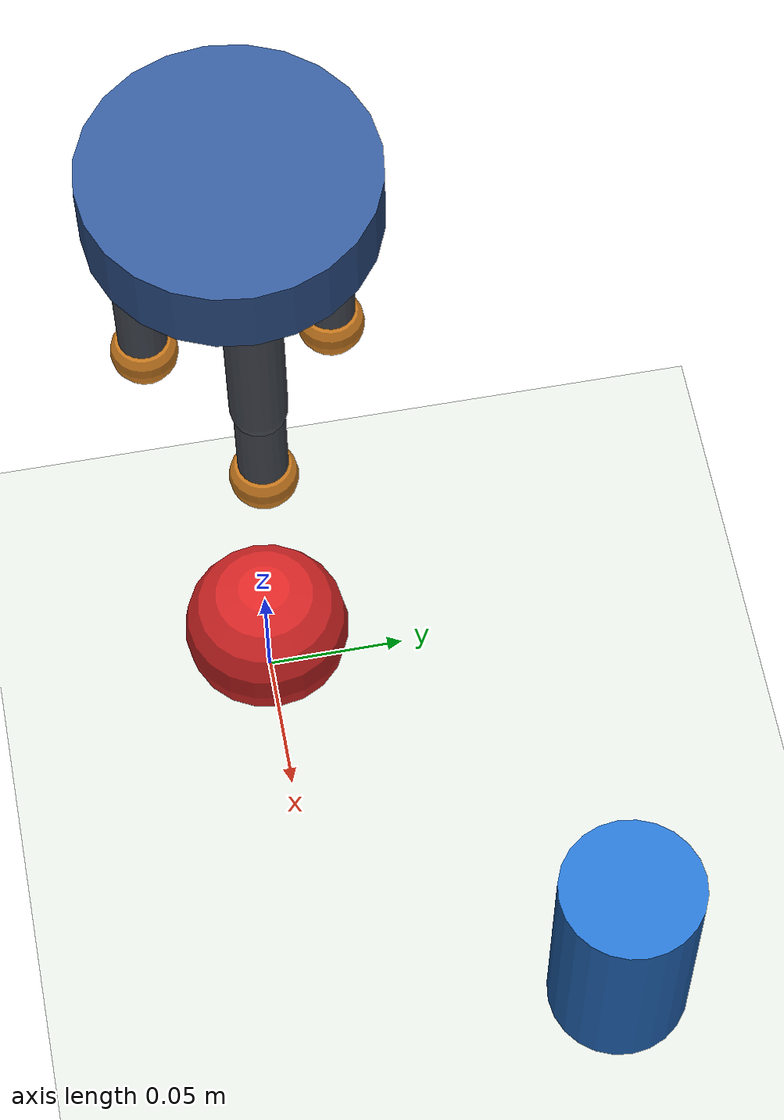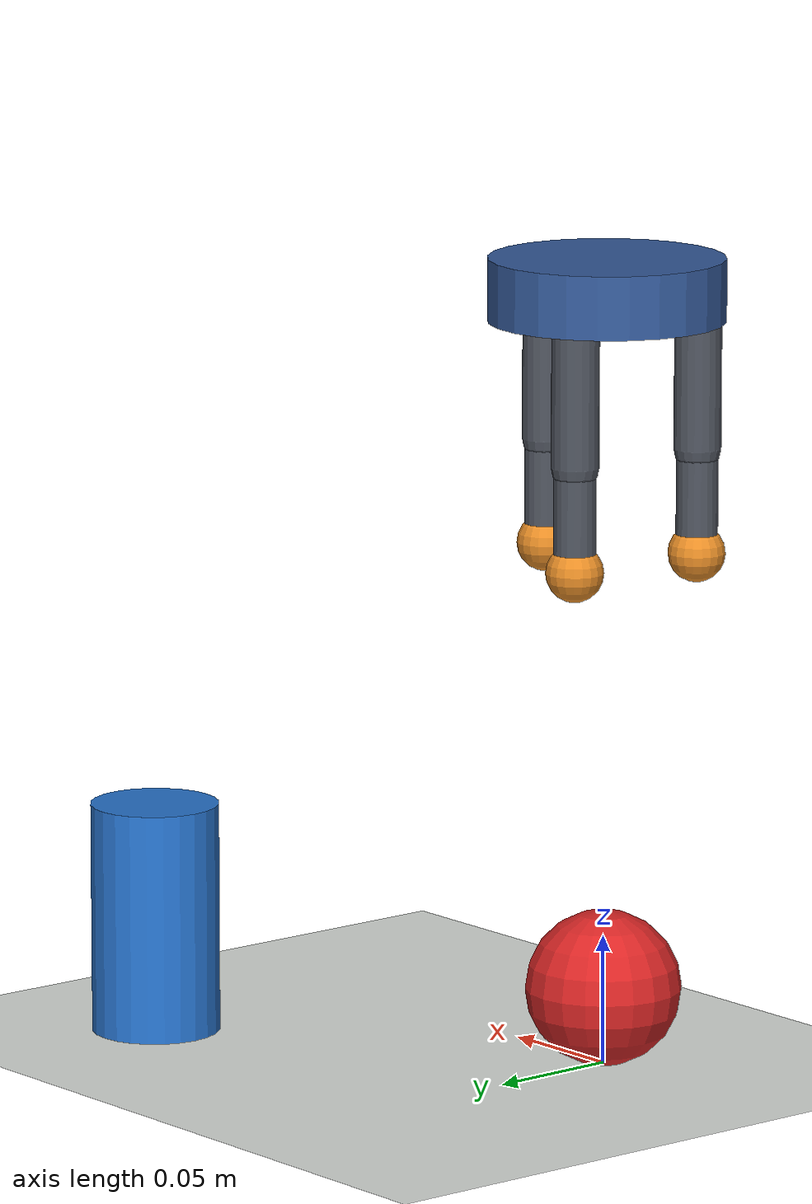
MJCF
<mujoco model="hand3">
  <compiler angle="radian" autolimits="true"/>
  <option timestep="0.002" integrator="implicitfast" cone="elliptic" impratio="10"/>

  <default>
    <default class="gantry">
      <joint type="slide" damping="5" armature="0.1"/>
      <position kp="8000" kv="200"/>
    </default>
    <default class="finger">
      <joint type="hinge" axis="0 1 0" damping="0.02" armature="0.001"/>
      <geom type="capsule" contype="1" conaffinity="1" rgba=".3 .32 .36 1" friction="1.2 0.01 0.0001" condim="4"/>
      <position kp="2" kv="0.05" ctrlrange="-0.3 1.6"/>
      <default class="tip">
        <geom type="sphere" size="0.011" rgba=".9 .55 .15 1" friction="1.5 0.02 0.0001"/>
      </default>
    </default>
  </default>

  <worldbody>
    <light pos="0.3 -0.6 1.4" dir="-0.2 0.5 -1"/>
    <geom name="floor" type="plane" size="1 1 0.05" rgba=".86 .88 .86 1"/>

    <body name="palm" pos="0 0 0.3" childclass="gantry">
      <joint name="gx" axis="1 0 0" range="-0.3 0.3"/>
      <joint name="gy" axis="0 1 0" range="-0.3 0.3"/>
      <joint name="gz" axis="0 0 1" range="-0.25 0.1"/>
      <geom name="palm" type="cylinder" size="0.045 0.012" mass="0.5" rgba=".2 .35 .6 1" contype="1" conaffinity="1"/>
      <site name="palm_center" pos="0 0 -0.012" size="0.006"/>

      <body name="f1_prox" pos="0.035 0 -0.012" childclass="finger">
        <joint name="f1_prox" range="-0.3 1.4"/>
        <geom name="f1_prox" fromto="0 0 0 0 0 -0.05" size="0.009" mass="0.02"/>
        <body name="f1_dist" pos="0 0 -0.05">
          <joint name="f1_dist" range="0 1.6"/>
          <geom name="f1_dist" fromto="0 0 0 0 0 -0.035" size="0.008" mass="0.012"/>
          <geom name="f1_tip" class="tip" pos="0 0 -0.04" mass="0.005"/>
          <site name="f1_tip" pos="0 0 -0.04" size="0.013" rgba="1 1 1 0"/>
        </body>
      </body>

      <body name="f2_prox" pos="-0.0175 0.0303 -0.012" quat="0.5 0 0 0.8660254" childclass="finger">
        <joint name="f2_prox" range="-0.3 1.4"/>
        <geom name="f2_prox" fromto="0 0 0 0 0 -0.05" size="0.009" mass="0.02"/>
        <body name="f2_dist" pos="0 0 -0.05">
          <joint name="f2_dist" range="0 1.6"/>
          <geom name="f2_dist" fromto="0 0 0 0 0 -0.035" size="0.008" mass="0.012"/>
          <geom name="f2_tip" class="tip" pos="0 0 -0.04" mass="0.005"/>
          <site name="f2_tip" pos="0 0 -0.04" size="0.013" rgba="1 1 1 0"/>
        </body>
      </body>

      <body name="f3_prox" pos="-0.0175 -0.0303 -0.012" quat="-0.5 0 0 0.8660254" childclass="finger">
        <joint name="f3_prox" range="-0.3 1.4"/>
        <geom name="f3_prox" fromto="0 0 0 0 0 -0.05" size="0.009" mass="0.02"/>
        <body name="f3_dist" pos="0 0 -0.05">
          <joint name="f3_dist" range="0 1.6"/>
          <geom name="f3_dist" fromto="0 0 0 0 0 -0.035" size="0.008" mass="0.012"/>
          <geom name="f3_tip" class="tip" pos="0 0 -0.04" mass="0.005"/>
          <site name="f3_tip" pos="0 0 -0.04" size="0.013" rgba="1 1 1 0"/>
        </body>
      </body>
    </body>

    <body name="ball" pos="0 0 0.03">
      <freejoint name="ball"/>
      <geom name="ball" type="sphere" size="0.03" mass="0.05" rgba=".85 .15 .15 1" friction="1 0.01 0.0001" condim="4"/>
    </body>

    <body name="can" pos="0.15 0.1 0.045">
      <freejoint name="can"/>
      <geom name="can" type="cylinder" size="0.025 0.045" mass="0.06" rgba=".15 .45 .8 1" friction="1 0.01 0.0001" condim="4"/>
    </body>

    <camera name="overview" pos="0.45 -0.45 0.5" xyaxes="0.7071 0.7071 0 -0.3763 0.3763 0.8466" fovy="45"/>
  </worldbody>

  <actuator>
    <position name="gx" joint="gx" class="gantry" ctrlrange="-0.3 0.3"/>
    <position name="gy" joint="gy" class="gantry" ctrlrange="-0.3 0.3"/>
    <position name="gz" joint="gz" class="gantry" ctrlrange="-0.25 0.1"/>
    <position name="f1_prox" joint="f1_prox" class="finger"/>
    <position name="f1_dist" joint="f1_dist" class="finger"/>
    <position name="f2_prox" joint="f2_prox" class="finger"/>
    <position name="f2_dist" joint="f2_dist" class="finger"/>
    <position name="f3_prox" joint="f3_prox" class="finger"/>
    <position name="f3_dist" joint="f3_dist" class="finger"/>
  </actuator>

  <sensor>
    <framepos name="ball_pos" objtype="body" objname="ball"/>
    <!-- A touch sensor sums the normal forces of contacts whose point lies inside its site volume. -->
    <touch name="f1_touch" site="f1_tip"/>
    <touch name="f2_touch" site="f2_tip"/>
    <touch name="f3_touch" site="f3_tip"/>
  </sensor>
</mujoco>
